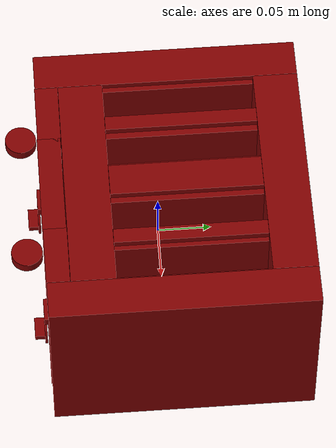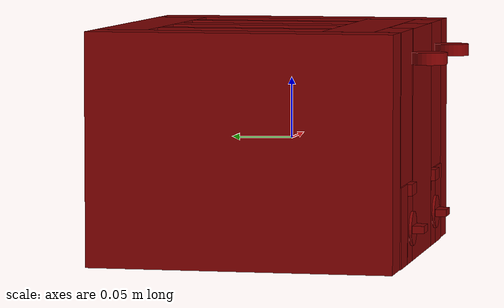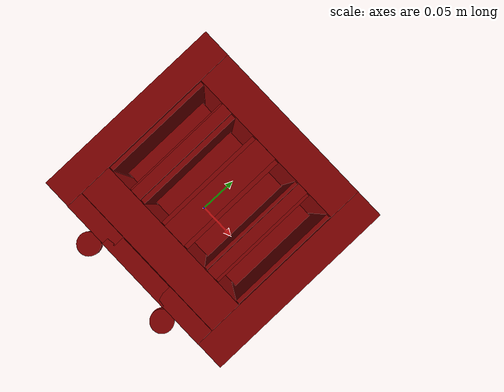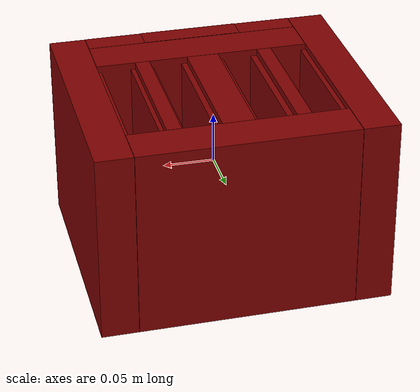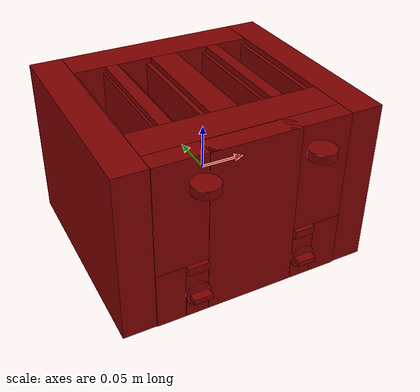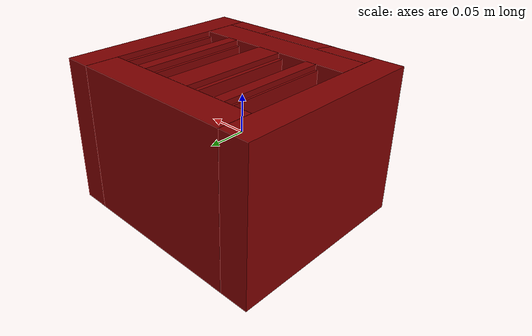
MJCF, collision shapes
<?xml version='1.0' encoding='UTF-8'?>
<mujoco model="model">
  <option timestep="0.002" gravity="0.0 0.0 -9.81"/>
  <compiler angle="radian"/>
  <asset>
    <mesh file="visuals/sideL_button_cancel.obj" name="sideL_button_cancel_vis"/>
    <mesh file="visuals/sideL_knob_doneness.obj" name="sideL_knob_doneness_vis"/>
    <mesh file="visuals/sideL_lever.obj" name="sideL_lever_vis"/>
    <mesh file="visuals/sideR_button_cancel.obj" name="sideR_button_cancel_vis"/>
    <mesh file="visuals/sideR_knob_doneness.obj" name="sideR_knob_doneness_vis"/>
    <mesh file="visuals/sideR_lever.obj" name="sideR_lever_vis"/>
    <mesh file="visuals/Body001.obj" name="Body001_vis"/>
    <mesh file="visuals/Body002.obj" name="Body002_vis"/>
    <texture file="visuals/T_BC001.png" name="Body001_material" type="2d"/>
    <material name="Body001_material" rgba="1 1 1 1.0" texture="Body001_material" shininess="1" specular="1"/>
    <texture file="visuals/T_BC001.png" name="sideL_button_cancel_material" type="2d"/>
    <material name="sideL_button_cancel_material" rgba="1 1 1 1.0" texture="sideL_button_cancel_material" shininess="0.4472135901451111" specular="0.3103448502657381"/>
    <texture file="visuals/T_BC001.png" name="sideL_knob_doneness_material" type="2d"/>
    <material name="sideL_knob_doneness_material" rgba="1 1 1 1.0" texture="sideL_knob_doneness_material" shininess="0.4472135901451111" specular="0.3103448502657381"/>
    <texture file="visuals/T_BC001.png" name="sideL_lever_material" type="2d"/>
    <material name="sideL_lever_material" rgba="1 1 1 1.0" texture="sideL_lever_material" shininess="0.4472135901451111" specular="0.3103448502657381"/>
    <texture file="visuals/T_BC001.png" name="sideR_button_cancel_material" type="2d"/>
    <material name="sideR_button_cancel_material" rgba="1 1 1 1.0" texture="sideR_button_cancel_material" shininess="0.4472135901451111" specular="0.3103448502657381"/>
    <texture file="visuals/T_BC001.png" name="sideR_knob_doneness_material" type="2d"/>
    <material name="sideR_knob_doneness_material" rgba="1 1 1 1.0" texture="sideR_knob_doneness_material" shininess="0.4472135901451111" specular="0.3103448502657381"/>
    <texture file="visuals/T_BC001.png" name="sideR_lever_material" type="2d"/>
    <material name="sideR_lever_material" rgba="1 1 1 1.0" texture="sideR_lever_material" shininess="0.4472135901451111" specular="0.3103448502657381"/>
    <texture file="visuals/T_BC001.png" name="Body002_material" type="2d"/>
    <material name="Body002_material" rgba="1 1 1 1.0" texture="Body002_material" shininess="1" specular="1"/>
  </asset>
  <default>
    <default class="visual">
      <geom conaffinity="0" contype="0" group="1" type="mesh"/>
    </default>
    <default class="collision_1">
      <geom group="0" rgba="0.5 0 0 0.5" solref="0.004 1" solimp="0.998 0.998 0.001"/>
    </default>
    <default class="collision_2">
      <geom group="0" rgba="0.5 0 0 0.5" solref="0.004 1" solimp="0.998 0.998 0.001"/>
    </default>
    <default class="collision_3">
      <geom group="0" rgba="0.5 0 0 0.5" solref="0.004 1" solimp="0.998 0.998 0.001"/>
    </default>
    <default class="collision_4">
      <geom group="0" rgba="0.5 0 0 0.5" solref="0.004 1" solimp="0.998 0.998 0.001"/>
    </default>
    <default class="collision_5">
      <geom group="0" rgba="0.5 0 0 0.5" solref="0.004 1" solimp="0.998 0.998 0.001"/>
    </default>
    <default class="collision_6">
      <geom group="0" rgba="0.5 0 0 0.5" solref="0.004 1" solimp="0.998 0.998 0.001"/>
    </default>
    <default class="collision_7">
      <geom group="0" rgba="0.5 0 0 0.5" solref="0.004 1" solimp="0.998 0.998 0.001"/>
    </default>
    <default class="collision_8">
      <geom group="0" rgba="0.5 0 0 0.5" solref="0.004 1" solimp="0.998 0.998 0.001"/>
    </default>
    <default class="spawn">
      <geom group="0" rgba="1 1 1 0.5" contype="0" conaffinity="0"/>
      <site group="0" rgba="1 1 1 0.5"/>
    </default>
    <default class="region">
      <geom group="1" conaffinity="0" contype="0" rgba="0 1 0 0" mass="0"/>
    </default>
  </default>
  <worldbody>
    <body>
      <body name="object">
        <geom mesh="Body001_vis" type="mesh" solimp="0.998 0.998 0.001" solref="0.001 1" friction="0.95 0.3 0.1" class="visual" material="Body001_material"/>
        <geom type="box" pos="-0.12359587848186493 0.015356372110545635 -6.262044189497828e-05" size="0.017872096970677376 0.12299121171236038 0.09347424656152725" quat="1.0 0.0 0.0 0.0" class="collision_1"/>
        <geom type="box" pos="0.0 0.11751408129930496 -6.262044189497828e-05" size="0.10543525218963623 0.020833496004343033 0.09347424656152725" quat="1.0 0.0 0.0 0.0" class="collision_1"/>
        <geom type="box" pos="0.12359587848186493 0.015356372110545635 -6.262044189497828e-05" size="0.017872096970677376 0.12299121171236038 0.09347424656152725" quat="1.0 0.0 0.0 0.0" class="collision_1"/>
        <geom type="box" pos="0.0 -0.0654105618596077 -6.262044189497828e-05" size="0.10543525218963623 0.02068128064274788 0.09347424656152725" quat="1.0 0.0 0.0 0.0" class="collision_1"/>
        <geom type="box" pos="0.0 0.026008769869804382 -0.08425549417734146" size="0.10543525218963623 0.0705835223197937 0.009281376376748085" quat="1.0 0.0 0.0 0.0" class="collision_1"/>
        <geom type="box" pos="0.0 0.026008769869804382 0.009678319096565247" size="0.015541963279247284 0.0705835223197937 0.08373329788446426" quat="1.0 0.0 0.0 0.0" class="collision_1"/>
        <geom type="box" pos="0.060414910316467285 0.026008769869804382 0.009678320959210396" size="0.007127175107598305 0.0705835223197937 0.08373988419771194" quat="1.0 0.0 0.0 0.0" class="collision_1"/>
        <geom type="box" pos="-0.06237529590725899 0.026008769869804382 0.009678320959210396" size="0.007127175107598305 0.0705835223197937 0.08373962342739105" quat="1.0 0.0 0.0 0.0" class="collision_1"/>
        <geom type="box" pos="0.0 -0.09764625877141953 -6.262864917516708e-05" size="0.04877220094203949 0.010851271450519562 0.09347424656152725" quat="1.0 0.0 0.0 0.0" class="collision_1"/>
        <geom type="box" pos="-0.07158268988132477 -0.09715727716684341 0.032520730048418045" size="0.03385832905769348 0.010825005359947681 0.060890886932611465" quat="1.0 0.0 0.0 0.0" class="collision_1"/>
        <geom type="box" pos="0.07158268988132477 -0.09715727716684341 0.032520730048418045" size="0.03385832533240318 0.010825003497302532 0.060890886932611465" quat="1.0 0.0 0.0 0.0" class="collision_1"/>
        <geom type="box" pos="-0.08966203778982162 -0.09764625877141953 -0.06120593100786209" size="0.015778977423906326 0.010851271450519562 0.032330937683582306" quat="1.0 0.0 0.0 0.0" class="collision_1"/>
        <geom type="box" pos="0.08966202288866043 -0.09764625877141953 -0.06120593100786209" size="0.015778983011841774 0.010851268656551838 0.03233093395829201" quat="1.0 0.0 0.0 0.0" class="collision_1"/>
        <geom type="box" pos="-0.06131019815802574 -0.09764625877141953 -0.06638770550489426" size="0.01230659894645214 0.010851271450519562 0.02714916318655014" quat="1.0 0.0 0.0 0.0" class="collision_1"/>
        <geom type="box" pos="0.061395350843667984 -0.09764625877141953 -0.06638771295547485" size="0.012287636287510395 0.010851268656551838 0.02714916318655014" quat="1.0 0.0 0.0 0.0" class="collision_1"/>
        <body name="sideL_button_cancel">
          <joint axis="0.0 1.0 0.0" pos="-0.06111370399594307 -0.10810773074626923 -0.03400947526097298" limited="true" name="sideL_button_cancel_joint" range="0.0 0.002" type="slide" damping="1" frictionloss="1" armature=".01" stiffness="4" springref="-1"/>
          <geom mesh="sideL_button_cancel_vis" type="mesh" solimp="0.998 0.998 0.001" solref="0.001 1" friction="0.95 0.3 0.1" class="visual" material="sideL_button_cancel_material"/>
          <geom class="collision_2" type="box" pos="-0.06105734780430794 -0.10847771912813187 -0.03392501920461655" size="0.011366881430149078 0.0033669923432171345 0.004586411640048027" quat="1.0 0.0 0.0 0.0" name="sideL_button_cancel_main"/>
        </body>
        <body name="sideL_knob_doneness">
          <joint axis="0.0 1.0 0.0" pos="-0.06111369654536247 -0.11301333457231522 -0.06550730019807816" limited="true" name="sideL_knob_doneness_joint" range="0.0 3.141592653589793" type="hinge" damping="0.05" armature="1" frictionloss="0.75"/>
          <geom mesh="sideL_knob_doneness_vis" type="mesh" solimp="0.998 0.998 0.001" solref="0.001 1" friction="0.95 0.3 0.1" class="visual" material="sideL_knob_doneness_material"/>
          <geom type="cylinder" pos="-0.06111369654536247 -0.11081932485103607 -0.06550730019807816" size="0.013856115750968456 0.0011511534685268998" quat="0.7071067094802856 0.7071068286895752 0.0 0.0" class="collision_3" friction="100 0.5 0.01"/>
          <geom class="collision_3" type="box" pos="-0.06105734780430794 -0.1164921224117279 -0.06557163596153259" size="0.010142200626432896 0.004901049192994833 0.002919602207839489" quat="1.0 0.0 0.0 0.0" name="sideL_knob_doneness_main" friction="100 0.5 0.01"/>
        </body>
        <body name="sideL_lever">
          <joint axis="0.0 0.0 -1.0" pos="-0.06111029535531998 -0.12187717854976654 0.06922665238380432" limited="true" name="sideL_lever_joint" range="0.0 0.075" type="slide" damping="1" frictionloss="1" armature=".1" stiffness="2.9" springref="-0.5"/>
          <geom class="region" name="reg_sideL_slotR" type="box" pos="-0.0349573353305459 0.026016579940915108 0.08995513804256916" size="0.014015358708798886 0.06643385796248913 0.076000224635005"/>
          <geom class="region" name="reg_sideL_slotL" type="box" pos="-0.08651578798890114 0.026016579940915108 0.08995489962399006" size="0.013958291918039323 0.06643385796248913 0.0759999862164259"/>
          <geom mesh="sideL_lever_vis" type="mesh" solimp="0.998 0.998 0.001" solref="0.001 1" friction="0.95 0.3 0.1" class="visual" material="sideL_lever_material"/>
          <geom class="collision_4" type="cylinder" pos="-0.06101435795426369 -0.12370685487985611 0.07079462707042694" size="0.01428570318967104 0.00479813851416111" quat="1.0 0.0 0.0 0.0" name="sideL_lever_handle"/>
          <geom class="collision_4" type="box" pos="-0.0865340530872345 0.026008769869804382 0.013695631176233292" size="0.01249999925494194 0.06499999761581421 0.0008289467077702284" quat="1.0 0.0 0.0 0.0" name="sideL_slotL_floor"/>
          <geom class="collision_4" type="box" pos="-0.035070475190877914 0.026008769869804382 0.013695631176233292" size="0.01249999925494194 0.06499999761581421 0.0008289467077702284" quat="1.0 0.0 0.0 0.0" name="sideL_slotR_floor"/>
        </body>
        <body name="sideR_button_cancel">
          <joint axis="0.0 1.0 0.0" pos="0.06116006150841713 -0.10810773074626923 -0.03400947526097298" limited="true" name="sideR_button_cancel_joint" range="0.0 0.002" type="slide" damping="1" frictionloss="1" armature=".01" stiffness="4" springref="-1"/>
          <geom mesh="sideR_button_cancel_vis" type="mesh" solimp="0.998 0.998 0.001" solref="0.001 1" friction="0.95 0.3 0.1" class="visual" material="sideR_button_cancel_material"/>
          <geom class="collision_5" type="box" pos="0.061190277338027954 -0.10847771912813187 -0.03396518528461456" size="0.011366883292794228 0.0033669949043542147 0.004586411640048027" quat="1.0 0.0 0.0 0.0" name="sideR_button_cancel_main"/>
        </body>
        <body name="sideR_knob_doneness">
          <joint axis="0.0 1.0 0.0" pos="0.06116006150841713 -0.11301333457231522 -0.06550730019807816" limited="true" name="sideR_knob_doneness_joint" range="0.0 3.141592653589793" type="hinge" damping="0.05" armature="1" frictionloss="0.75"/>
          <geom mesh="sideR_knob_doneness_vis" type="mesh" solimp="0.998 0.998 0.001" solref="0.001 1" friction="0.95 0.3 0.1" class="visual" material="sideR_knob_doneness_material"/>
          <geom type="cylinder" pos="0.06116006150841713 -0.11081932485103607 -0.06550730019807816" size="0.013856115750968456 0.0011511534685268998" quat="0.7071067094802856 0.7071068286895752 0.0 0.0" class="collision_6" friction="100 0.5 0.01"/>
          <geom class="collision_6" type="box" pos="0.060642439872026443 -0.1164921224117279 -0.06557163596153259" size="0.010142200626432896 0.004901049192994833 0.002919602207839489" quat="1.0 0.0 0.0 0.0" name="sideR_knob_doneness_main" friction="100 0.5 0.01"/>
        </body>
        <body name="sideR_lever">
          <joint axis="0.0 0.0 -1.0" pos="0.061163462698459625 -0.12187717854976654 0.06922665238380432" limited="true" name="sideR_lever_joint" range="0.0 0.075" type="slide" damping="1" frictionloss="1" armature=".1" stiffness="2.9" springref="-0.5"/>
          <geom class="region" name="reg_sideR_slotR" type="box" pos="0.08668140321969986 0.026016579940915108 0.08995513804256916" size="0.013925617396831513 0.06643385796248913 0.076000224635005"/>
          <geom class="region" name="reg_sideR_slotL" type="box" pos="0.03513516113162041 0.026016579940915108 0.08995513804256916" size="0.013965135276317597 0.06643385796248913 0.076000224635005"/>
          <geom mesh="sideR_lever_vis" type="mesh" solimp="0.998 0.998 0.001" solref="0.001 1" friction="0.95 0.3 0.1" class="visual" material="sideR_lever_material"/>
          <geom class="collision_7" type="cylinder" pos="0.061295267194509506 -0.12370685487985611 0.07079462707042694" size="0.01428570318967104 0.004798142239451408" quat="1.0 0.0 0.0 0.0" name="sideR_lever_handle"/>
          <geom class="collision_7" type="box" pos="0.035070475190877914 0.026008769869804382 0.013695631176233292" size="0.01249999925494194 0.06499999761581421 0.0008289495017379522" quat="1.0 0.0 0.0 0.0" name="sideR_slotL_floor"/>
          <geom class="collision_7" type="box" pos="0.0865340530872345 0.026008769869804382 0.013695631176233292" size="0.01249999925494194 0.06499999761581421 0.0008289495017379522" quat="1.0 0.0 0.0 0.0" name="sideR_slotR_floor"/>
        </body>
        <body name="Body002">
          <geom mesh="Body002_vis" type="mesh" solimp="0.998 0.998 0.001" solref="0.001 1" friction="0.95 0.3 0.1" class="visual" material="Body002_material"/>
          <geom type="box" pos="0.1053571105003357 0.026008769869804382 0.0028622071258723736" size="0.004467664752155542 0.0705835223197937 0.08373754471540451" quat="1.0 0.0 0.0 0.0" class="collision_8"/>
          <geom type="box" pos="0.06738638132810593 0.026008769869804382 0.002984043210744858" size="0.004467664752155542 0.0705835223197937 0.08373728394508362" quat="1.0 0.0 0.0 0.0" class="collision_8"/>
          <geom type="box" pos="0.016760798171162605 0.026008769869804382 0.00308637460693717" size="0.004467664752155542 0.0705835223197937 0.08373702317476273" quat="1.0 0.0 0.0 0.0" class="collision_8"/>
          <geom type="box" pos="0.05368540808558464 0.026008769869804382 0.0024558277800679207" size="0.004467664752155542 0.0705835223197937 0.08373676240444183" quat="1.0 0.0 0.0 0.0" class="collision_8"/>
          <geom type="box" pos="-0.016427207738161087 0.026008769869804382 0.003063312266021967" size="0.004467664752155542 0.0705835223197937 0.08373650163412094" quat="1.0 0.0 0.0 0.0" class="collision_8"/>
          <geom type="box" pos="-0.05355564132332802 0.026008769869804382 0.003019891446456313" size="0.004467664752155542 0.0705835223197937 0.08373624086380005" quat="1.0 0.0 0.0 0.0" class="collision_8"/>
          <geom type="box" pos="-0.10527137666940689 0.026008769869804382 0.0037822723388671875" size="0.004467664752155542 0.0705835223197937 0.08373598009347916" quat="1.0 0.0 0.0 0.0" class="collision_8"/>
          <geom type="box" pos="-0.067820705473423 0.026008769869804382 0.003245552536100149" size="0.004467664752155542 0.0705835223197937 0.08373571932315826" quat="1.0 0.0 0.0 0.0" class="collision_8"/>
        </body>
        <geom class="region" name="reg_main" type="box" pos="3.725290298461914e-09 0.015164926648139954 0.0" size="0.14241330122947693 0.12408250367641449 0.09435094690322876"/>
      </body>
    </body>
  </worldbody>
  <actuator>
    <motor name="sideL_button_cancel_joint_actuator" joint="sideL_button_cancel_joint" gear="0.1"/>
    <motor name="sideL_knob_doneness_joint_actuator" joint="sideL_knob_doneness_joint" gear="10"/>
    <motor name="sideL_lever_joint_actuator" joint="sideL_lever_joint" gear="5"/>
    <motor name="sideR_button_cancel_joint_actuator" joint="sideR_button_cancel_joint" gear="0.1"/>
    <motor name="sideR_knob_doneness_joint_actuator" joint="sideR_knob_doneness_joint" gear="10"/>
    <motor name="sideR_lever_joint_actuator" joint="sideR_lever_joint" gear="5"/>
  </actuator>
</mujoco>
